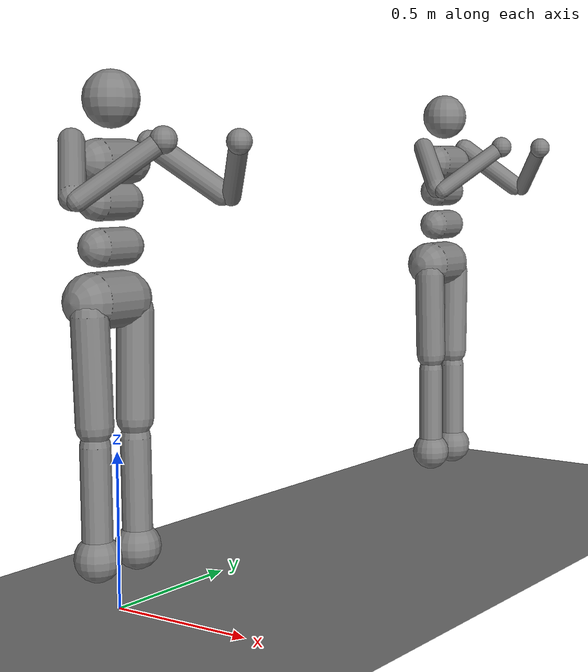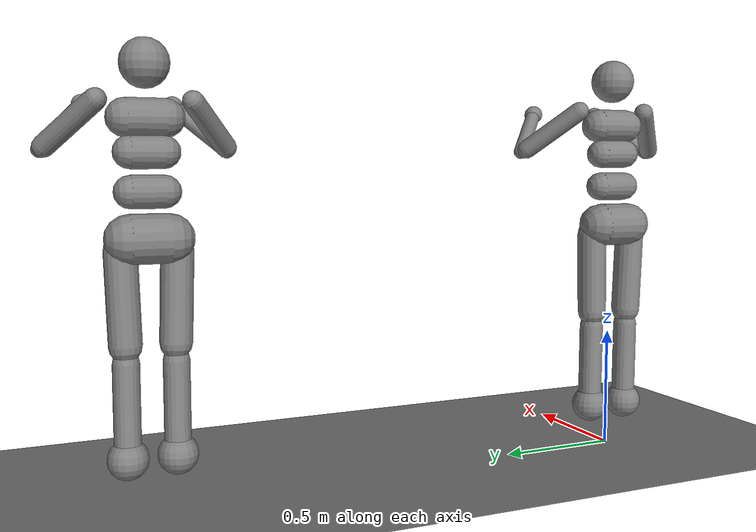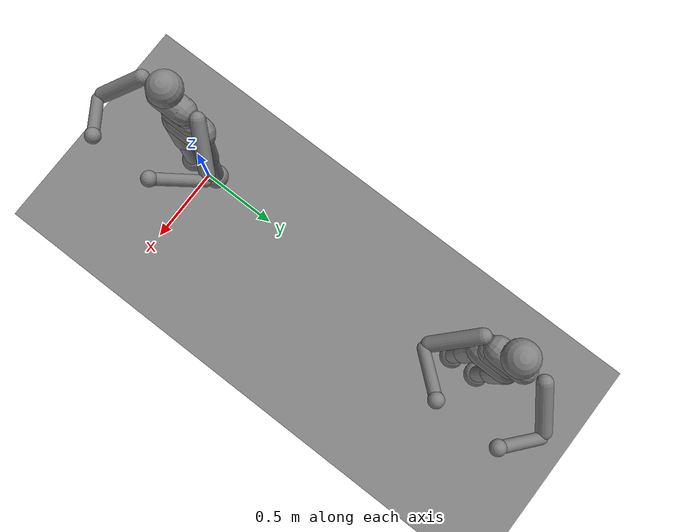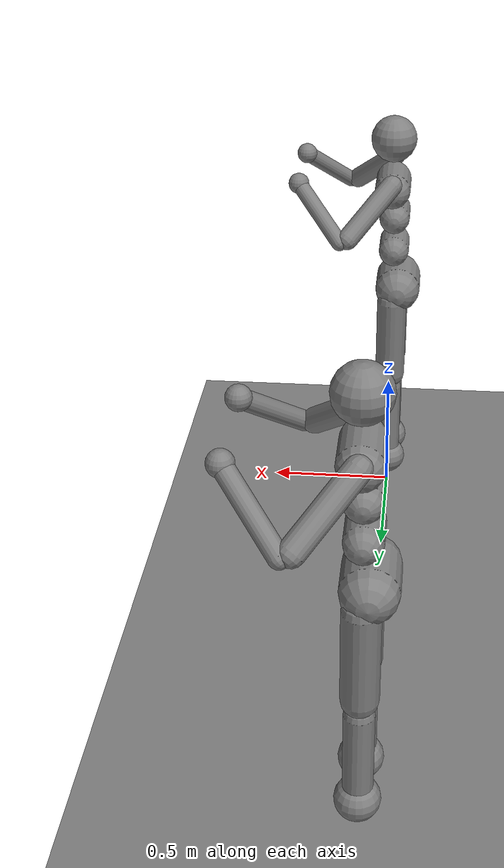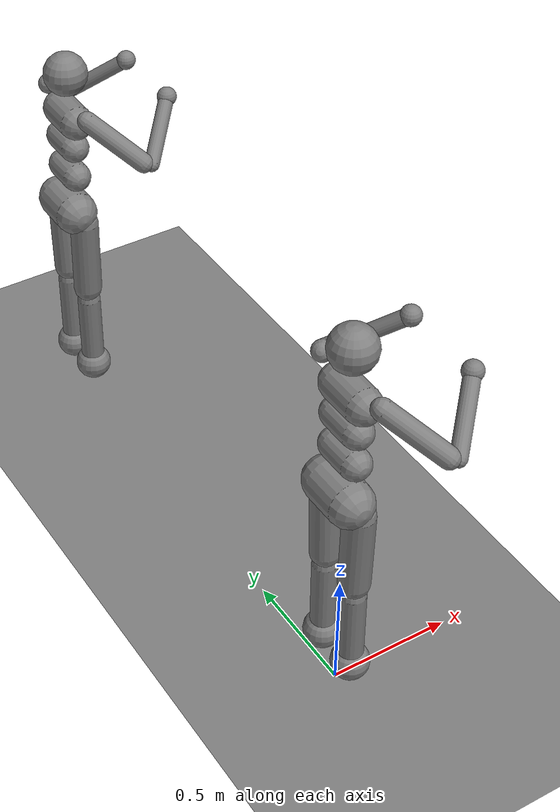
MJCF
<mujoco>
  <worldbody>
    <geom density="1000" type="plane" size="20 20 1" pos="0 1.88 0" quat="-1 0 0 0" priority="0" contype="0" conaffinity="1" group="0" condim="3" solmix="1" solref="0.02 1" solimp="0.9 0.95 0.001" margin="0" gap="0" friction="1 0.1 0.1" fluidshape="none" fluidcoef="5 0.25 1.5 1 1" name="floor_0" />
    <body pos="0 2.0 1.4" quat="-1 0 0 0" gravcomp="0" name="torso_1">
      <freejoint name="root_2" />
      <geom density="1000" type="capsule" size="0.07 0.07000002" pos="0 0 0" quat="0.7071068 0.7071068 0 0" priority="0" contype="0" conaffinity="0" group="0" condim="3" solmix="1" solref="0.02 1" solimp="0.9 0.95 0.001" margin="0" gap="0" friction="1 0.005 0.0001" fluidshape="none" fluidcoef="5 0.25 1.5 1 1" name="torso1_3" />
      <geom density="1000" type="sphere" size="0.09" pos="0 0 0.1899999" quat="-1 0 0 0" priority="0" contype="0" conaffinity="0" group="0" condim="3" solmix="1" solref="0.02 1" solimp="0.9 0.95 0.001" margin="0" gap="0" friction="1 0.005 0.0001" fluidshape="none" fluidcoef="5 0.25 1.5 1 1" name="head_4" />
      <geom density="1000" type="capsule" size="0.06 0.06000001" pos="-0.01 0 -0.12" quat="0.7071068 0.7071068 0 0" priority="0" contype="0" conaffinity="0" group="0" condim="3" solmix="1" solref="0.02 1" solimp="0.9 0.95 0.001" margin="0" gap="0" friction="1 0.005 0.0001" fluidshape="none" fluidcoef="5 0.25 1.5 1 1" name="uwaist_5" />
      <body pos="-0.01 0 -0.26" quat="0.999998 0 -0.002 0" gravcomp="0" name="lwaist_6">
        <joint type="hinge" pos="2.669552E-10 0 0.06499998" axis="-4.76837E-07 0 1" ref="0" armature="0.02" springref="0" springdamper="0 0" damping="5" stiffness="20" solreflimit="0.02 1" solimplimit="0.9 0.95 0.001 0.5 2" solreffriction="0.02 1" solimpfriction="0.9 0.95 0.001 0.5 2" frictionloss="0" limited="true" margin="0" range="-44.99999 44.99999" name="abdomen_z_9" />
        <joint type="hinge" pos="2.669552E-10 0 0.06499998" axis="-3.576278E-07 1 0" ref="0" armature="0.02" springref="0" springdamper="0 0" damping="5" stiffness="10" solreflimit="0.02 1" solimplimit="0.9 0.95 0.001 0.5 2" solreffriction="0.02 1" solimpfriction="0.9 0.95 0.001 0.5 2" frictionloss="0" limited="true" margin="0" range="-75.00018 30.00002" name="abdomen_y_10" />
        <geom density="1000" type="capsule" size="0.06 0.06000002" pos="0 0 0" quat="0.7071069 0.7071069 1.74352E-11 -1.74352E-11" priority="0" contype="0" conaffinity="0" group="0" condim="3" solmix="1" solref="0.02 1" solimp="0.9 0.95 0.001" margin="0" gap="0" friction="1 0.005 0.0001" fluidshape="none" fluidcoef="5 0.25 1.5 1 1" name="lwaist_11" />
        <body pos="-1.778979E-10 0 -0.165" quat="0.9999981 0 -0.002 0" gravcomp="0" name="pelvis_12">
          <joint type="hinge" pos="1.34564E-10 0 0.1" axis="1 0 0" ref="0" armature="0.02" springref="0" springdamper="0 0" damping="5" stiffness="10" solreflimit="0.02 1" solimplimit="0.9 0.95 0.001 0.5 2" solreffriction="0.02 1" solimpfriction="0.9 0.95 0.001 0.5 2" frictionloss="0" limited="true" margin="0" range="-34.99998 34.99998" name="abdomen_x_21" />
          <geom density="1000" type="capsule" size="0.09 0.07000005" pos="-0.02 0 -4.003656E-08" quat="0.707107 0.707107 1.94617E-10 -1.94617E-10" priority="0" contype="0" conaffinity="0" group="0" condim="3" solmix="1" solref="0.02 1" solimp="0.9 0.95 0.001" margin="0" gap="0" friction="1 0.005 0.0001" fluidshape="none" fluidcoef="5 0.25 1.5 1 1" name="butt_22" />
          <body pos="-4.352916E-10 -0.1 -0.04000005" quat="-1 0 0 0" gravcomp="0" name="right_thigh_23">
            <joint type="hinge" pos="0 0 0" axis="1 0 0" ref="0" armature="0.01" springref="0" springdamper="0 0" damping="5" stiffness="10" solreflimit="0.02 1" solimplimit="0.9 0.95 0.001 0.5 2" solreffriction="0.02 1" solimpfriction="0.9 0.95 0.001 0.5 2" frictionloss="0" limited="true" margin="0" range="-24.99998 5.000002" name="right_hip_x_31" />
            <joint type="hinge" pos="0 0 0" axis="-5.960461E-07 0 1" ref="0" armature="0.01" springref="0" springdamper="0 0" damping="5" stiffness="10" solreflimit="0.02 1" solimplimit="0.9 0.95 0.001 0.5 2" solreffriction="0.02 1" solimpfriction="0.9 0.95 0.001 0.5 2" frictionloss="0" limited="true" margin="0" range="-60.00014 34.99998" name="right_hip_z_32" />
            <joint type="hinge" pos="0 0 0" axis="-5.960461E-07 1 0" ref="0" armature="0.008" springref="0" springdamper="0 0" damping="5" stiffness="20" solreflimit="0.02 1" solimplimit="0.9 0.95 0.001 0.5 2" solreffriction="0.02 1" solimpfriction="0.9 0.95 0.001 0.5 2" frictionloss="0" limited="true" margin="0" range="-109.9999 20.00001" name="right_hip_y_33" />
            <geom density="1000" type="capsule" size="0.06 0.170074" pos="5.229871E-10 0.004999995 -0.17" quat="0.9998921 0.0147011 1.165678E-10 -9.564907E-13" priority="0" contype="0" conaffinity="0" group="0" condim="3" solmix="1" solref="0.02 1" solimp="0.9 0.95 0.001" margin="0" gap="0" friction="1 0.005 0.0001" fluidshape="none" fluidcoef="5 0.25 1.5 1 1" name="right_thigh1_34" />
            <body pos="3.726947E-10 0.00999999 -0.403" quat="-1 0 0 0" gravcomp="0" name="right_shin_35">
              <joint type="hinge" pos="2.176458E-10 0 0.02000003" axis="-5.960461E-07 -1 0" ref="0" armature="0.006" springref="0" springdamper="0 0" damping="1" stiffness="0" solreflimit="0.02 1" solimplimit="0.9 0.95 0.001 0.5 2" solreffriction="0.02 1" solimpfriction="0.9 0.95 0.001 0.5 2" frictionloss="0" limited="true" margin="0" range="-160.0002 -2.000001" name="right_knee_41" />
              <geom density="1000" type="capsule" size="0.049 0.15" pos="2.749865E-10 0 -0.1499999" quat="-1 0 0 0" priority="0" contype="0" conaffinity="0" group="0" condim="3" solmix="1" solref="0.02 1" solimp="0.9 0.95 0.001" margin="0" gap="0" friction="1 0.005 0.0001" fluidshape="none" fluidcoef="5 0.25 1.5 1 1" name="right_shin1_42" />
              <body pos="-1.287055E-10 0 -0.45" quat="-1 0 0 0" gravcomp="0" name="right_foot_43">
                <geom density="1000" type="sphere" size="0.075" pos="-3.534547E-10 0 0.09999988" quat="-1 0 0 0" priority="0" contype="1" conaffinity="0" group="0" condim="3" solmix="1" solref="0.02 1" solimp="0.9 0.95 0.001" margin="0" gap="0" friction="1 0.005 0.0001" fluidshape="none" fluidcoef="5 0.25 1.5 1 1" name="right_foot_47" />
              </body>
            </body>
          </body>
          <body pos="-4.352916E-10 0.1 -0.04000005" quat="-1 0 0 0" gravcomp="0" name="left_thigh_24">
            <joint type="hinge" pos="0 0 0" axis="-1 0 0" ref="0" armature="0.01" springref="0" springdamper="0 0" damping="5" stiffness="10" solreflimit="0.02 1" solimplimit="0.9 0.95 0.001 0.5 2" solreffriction="0.02 1" solimpfriction="0.9 0.95 0.001 0.5 2" frictionloss="0" limited="true" margin="0" range="-24.99998 5.000002" name="left_hip_x_36" />
            <joint type="hinge" pos="0 0 0" axis="-4.768369E-07 0 -1" ref="0" armature="0.01" springref="0" springdamper="0 0" damping="5" stiffness="10" solreflimit="0.02 1" solimplimit="0.9 0.95 0.001 0.5 2" solreffriction="0.02 1" solimpfriction="0.9 0.95 0.001 0.5 2" frictionloss="0" limited="true" margin="0" range="-60.00014 34.99998" name="left_hip_z_37" />
            <joint type="hinge" pos="0 0 0" axis="-5.960461E-07 1 0" ref="0" armature="0.01" springref="0" springdamper="0 0" damping="5" stiffness="20" solreflimit="0.02 1" solimplimit="0.9 0.95 0.001 0.5 2" solreffriction="0.02 1" solimpfriction="0.9 0.95 0.001 0.5 2" frictionloss="0" limited="true" margin="0" range="-109.9999 20.00001" name="left_hip_y_38" />
            <geom density="1000" type="capsule" size="0.06 0.170074" pos="5.229871E-10 -0.004999995 -0.17" quat="0.9998921 -0.0147011 1.165678E-10 9.564907E-13" priority="0" contype="0" conaffinity="0" group="0" condim="3" solmix="1" solref="0.02 1" solimp="0.9 0.95 0.001" margin="0" gap="0" friction="1 0.005 0.0001" fluidshape="none" fluidcoef="5 0.25 1.5 1 1" name="left_thigh1_39" />
            <body pos="3.726947E-10 -0.00999999 -0.403" quat="-1 0 0 0" gravcomp="0" name="left_shin_40">
              <joint type="hinge" pos="2.176458E-10 0 0.02000003" axis="-5.960461E-07 -1 0" ref="0" armature="0.006" springref="0" springdamper="0 0" damping="1" stiffness="1" solreflimit="0.02 1" solimplimit="0.9 0.95 0.001 0.5 2" solreffriction="0.02 1" solimpfriction="0.9 0.95 0.001 0.5 2" frictionloss="0" limited="true" margin="0" range="-160.0002 -2.000001" name="left_knee_44" />
              <geom density="1000" type="capsule" size="0.049 0.15" pos="2.749865E-10 0 -0.1499999" quat="-1 0 0 0" priority="0" contype="0" conaffinity="0" group="0" condim="3" solmix="1" solref="0.02 1" solimp="0.9 0.95 0.001" margin="0" gap="0" friction="1 0.005 0.0001" fluidshape="none" fluidcoef="5 0.25 1.5 1 1" name="left_shin1_45" />
              <body pos="-1.287055E-10 0 -0.45" quat="-1 0 0 0" gravcomp="0" name="left_foot_46">
                <geom density="1000" type="sphere" size="0.075" pos="-3.534547E-10 0 0.09999988" quat="-1 0 0 0" priority="0" contype="1" conaffinity="0" group="0" condim="3" solmix="1" solref="0.02 1" solimp="0.9 0.95 0.001" margin="0" gap="0" friction="1 0.005 0.0001" fluidshape="none" fluidcoef="5 0.25 1.5 1 1" name="left_foot_48" />
              </body>
            </body>
          </body>
        </body>
      </body>
      <body pos="0 -0.17 0.05999994" quat="-1 0 0 0" gravcomp="0" name="right_upper_arm_7">
        <joint type="hinge" pos="0 0 0" axis="0.8164969 0.408248 0.408248" ref="0" armature="0.0068" springref="0" springdamper="0 0" damping="1" stiffness="1" solreflimit="0.02 1" solimplimit="0.9 0.95 0.001 0.5 2" solreffriction="0.02 1" solimpfriction="0.9 0.95 0.001 0.5 2" frictionloss="0" limited="true" margin="0" range="-85.00001 60.00014" name="right_shoulder1_13" />
        <joint type="hinge" pos="0 0 0" axis="0 -0.7071068 0.7071068" ref="0" armature="0.0051" springref="0" springdamper="0 0" damping="1" stiffness="1" solreflimit="0.02 1" solimplimit="0.9 0.95 0.001 0.5 2" solreffriction="0.02 1" solimpfriction="0.9 0.95 0.001 0.5 2" frictionloss="0" limited="true" margin="0" range="-85.00001 60.00014" name="right_shoulder2_14" />
        <geom density="1000" type="capsule" size="0.04 0.138564" pos="0.08 -0.08000004 -0.07999992" quat="0.8880737 -0.3250579 -0.3250579 0" priority="0" contype="0" conaffinity="0" group="0" condim="3" solmix="1" solref="0.02 1" solimp="0.9 0.95 0.001" margin="0" gap="0" friction="1 0.005 0.0001" fluidshape="none" fluidcoef="5 0.25 1.5 1 1" name="right_uarm1_15" />
        <body pos="0.18 -0.1800001 -0.1799999" quat="-1 0 0 0" gravcomp="0" name="right_lower_arm_16">
          <joint type="hinge" pos="0 0 0" axis="0 -0.7071068 0.7071068" ref="0" armature="0.0028" springref="0" springdamper="0 0" damping="1" stiffness="0" solreflimit="0.02 1" solimplimit="0.9 0.95 0.001 0.5 2" solreffriction="0.02 1" solimpfriction="0.9 0.95 0.001 0.5 2" frictionloss="0" limited="true" margin="0" range="-90.00021 50.00002" name="right_elbow_25" />
          <geom density="1000" type="capsule" size="0.031 0.138564" pos="0.09 0.09000003 0.09000003" quat="0.459701 0.627963 -0.627963 0" priority="0" contype="0" conaffinity="0" group="0" condim="3" solmix="1" solref="0.02 1" solimp="0.9 0.95 0.001" margin="0" gap="0" friction="1 0.005 0.0001" fluidshape="none" fluidcoef="5 0.25 1.5 1 1" name="right_larm_26" />
          <geom density="1000" type="sphere" size="0.04" pos="0.18 0.1800001 0.1799999" quat="-1 0 0 0" priority="0" contype="0" conaffinity="0" group="0" condim="3" solmix="1" solref="0.02 1" solimp="0.9 0.95 0.001" margin="0" gap="0" friction="1 0.005 0.0001" fluidshape="none" fluidcoef="5 0.25 1.5 1 1" name="right_hand_27" />
        </body>
      </body>
      <body pos="0 0.17 0.05999994" quat="-1 0 0 0" gravcomp="0" name="left_upper_arm_8">
        <joint type="hinge" pos="0 0 0" axis="0.8164969 -0.408248 0.408248" ref="0" armature="0.0068" springref="0" springdamper="0 0" damping="1" stiffness="1" solreflimit="0.02 1" solimplimit="0.9 0.95 0.001 0.5 2" solreffriction="0.02 1" solimpfriction="0.9 0.95 0.001 0.5 2" frictionloss="0" limited="true" margin="0" range="-60.00014 85.00001" name="left_shoulder1_17" />
        <joint type="hinge" pos="0 0 0" axis="0 0.7071068 0.7071068" ref="0" armature="0.0051" springref="0" springdamper="0 0" damping="1" stiffness="1" solreflimit="0.02 1" solimplimit="0.9 0.95 0.001 0.5 2" solreffriction="0.02 1" solimpfriction="0.9 0.95 0.001 0.5 2" frictionloss="0" limited="true" margin="0" range="-60.00014 85.00001" name="left_shoulder2_18" />
        <geom density="1000" type="capsule" size="0.04 0.138564" pos="0.08 0.08000016 -0.07999992" quat="0.8880737 0.3250579 -0.3250579 0" priority="0" contype="0" conaffinity="0" group="0" condim="3" solmix="1" solref="0.02 1" solimp="0.9 0.95 0.001" margin="0" gap="0" friction="1 0.005 0.0001" fluidshape="none" fluidcoef="5 0.25 1.5 1 1" name="left_uarm1_19" />
        <body pos="0.18 0.1800001 -0.1799999" quat="-1 0 0 0" gravcomp="0" name="left_lower_arm_20">
          <joint type="hinge" pos="0 0 0" axis="0 -0.7071068 -0.7071068" ref="0" armature="0.0028" springref="0" springdamper="0 0" damping="1" stiffness="0" solreflimit="0.02 1" solimplimit="0.9 0.95 0.001 0.5 2" solreffriction="0.02 1" solimpfriction="0.9 0.95 0.001 0.5 2" frictionloss="0" limited="true" margin="0" range="-90.00021 50.00002" name="left_elbow_28" />
          <geom density="1000" type="capsule" size="0.031 0.138564" pos="0.09 -0.09000015 0.09000003" quat="0.459701 -0.627963 -0.627963 0" priority="0" contype="0" conaffinity="0" group="0" condim="3" solmix="1" solref="0.02 1" solimp="0.9 0.95 0.001" margin="0" gap="0" friction="1 0.005 0.0001" fluidshape="none" fluidcoef="5 0.25 1.5 1 1" name="left_larm_29" />
          <geom density="1000" type="sphere" size="0.04" pos="0.18 -0.1800001 0.1799999" quat="-1 0 0 0" priority="0" contype="0" conaffinity="0" group="0" condim="3" solmix="1" solref="0.02 1" solimp="0.9 0.95 0.001" margin="0" gap="0" friction="1 0.005 0.0001" fluidshape="none" fluidcoef="5 0.25 1.5 1 1" name="left_hand_30" />
        </body>
      </body>
    </body>
    <body pos="0 0 1.4" quat="-1 0 0 0" gravcomp="0" name="torso_49">
      <freejoint name="root_50" />
      <geom density="1000" type="capsule" size="0.07 0.07000002" pos="0 0 0" quat="0.7071068 0.7071068 0 0" priority="0" contype="0" conaffinity="0" group="0" condim="3" solmix="1" solref="0.02 1" solimp="0.9 0.95 0.001" margin="0" gap="0" friction="1 0.005 0.0001" fluidshape="none" fluidcoef="5 0.25 1.5 1 1" name="torso1_51" />
      <geom density="1000" type="sphere" size="0.09" pos="0 0 0.1899999" quat="-1 0 0 0" priority="0" contype="0" conaffinity="0" group="0" condim="3" solmix="1" solref="0.02 1" solimp="0.9 0.95 0.001" margin="0" gap="0" friction="1 0.005 0.0001" fluidshape="none" fluidcoef="5 0.25 1.5 1 1" name="head_52" />
      <geom density="1000" type="capsule" size="0.06 0.06000001" pos="-0.01 0 -0.12" quat="0.7071068 0.7071068 0 0" priority="0" contype="0" conaffinity="0" group="0" condim="3" solmix="1" solref="0.02 1" solimp="0.9 0.95 0.001" margin="0" gap="0" friction="1 0.005 0.0001" fluidshape="none" fluidcoef="5 0.25 1.5 1 1" name="uwaist_53" />
      <body pos="-0.01 0 -0.26" quat="0.999998 0 -0.002 0" gravcomp="0" name="lwaist_54">
        <joint type="hinge" pos="2.669552E-10 0 0.06499998" axis="-4.76837E-07 0 1" ref="0" armature="0.02" springref="0" springdamper="0 0" damping="5" stiffness="20" solreflimit="0.02 1" solimplimit="0.9 0.95 0.001 0.5 2" solreffriction="0.02 1" solimpfriction="0.9 0.95 0.001 0.5 2" frictionloss="0" limited="true" margin="0" range="-44.99999 44.99999" name="abdomen_z_57" />
        <joint type="hinge" pos="2.669552E-10 0 0.06499998" axis="-3.576278E-07 1 0" ref="0" armature="0.02" springref="0" springdamper="0 0" damping="5" stiffness="10" solreflimit="0.02 1" solimplimit="0.9 0.95 0.001 0.5 2" solreffriction="0.02 1" solimpfriction="0.9 0.95 0.001 0.5 2" frictionloss="0" limited="true" margin="0" range="-75.00018 30.00002" name="abdomen_y_58" />
        <geom density="1000" type="capsule" size="0.06 0.06000002" pos="0 0 0" quat="0.7071069 0.7071069 1.74352E-11 -1.74352E-11" priority="0" contype="0" conaffinity="0" group="0" condim="3" solmix="1" solref="0.02 1" solimp="0.9 0.95 0.001" margin="0" gap="0" friction="1 0.005 0.0001" fluidshape="none" fluidcoef="5 0.25 1.5 1 1" name="lwaist_59" />
        <body pos="-1.778979E-10 0 -0.165" quat="0.9999981 0 -0.002 0" gravcomp="0" name="pelvis_60">
          <joint type="hinge" pos="1.34564E-10 0 0.1" axis="1 0 0" ref="0" armature="0.02" springref="0" springdamper="0 0" damping="5" stiffness="10" solreflimit="0.02 1" solimplimit="0.9 0.95 0.001 0.5 2" solreffriction="0.02 1" solimpfriction="0.9 0.95 0.001 0.5 2" frictionloss="0" limited="true" margin="0" range="-34.99998 34.99998" name="abdomen_x_69" />
          <geom density="1000" type="capsule" size="0.09 0.07000005" pos="-0.02 0 -4.003656E-08" quat="0.707107 0.707107 1.94617E-10 -1.94617E-10" priority="0" contype="0" conaffinity="0" group="0" condim="3" solmix="1" solref="0.02 1" solimp="0.9 0.95 0.001" margin="0" gap="0" friction="1 0.005 0.0001" fluidshape="none" fluidcoef="5 0.25 1.5 1 1" name="butt_70" />
          <body pos="-4.352916E-10 -0.1 -0.04000005" quat="-1 0 0 0" gravcomp="0" name="right_thigh_71">
            <joint type="hinge" pos="0 0 0" axis="1 0 0" ref="0" armature="0.01" springref="0" springdamper="0 0" damping="5" stiffness="10" solreflimit="0.02 1" solimplimit="0.9 0.95 0.001 0.5 2" solreffriction="0.02 1" solimpfriction="0.9 0.95 0.001 0.5 2" frictionloss="0" limited="true" margin="0" range="-24.99998 5.000002" name="right_hip_x_79" />
            <joint type="hinge" pos="0 0 0" axis="-5.960461E-07 0 1" ref="0" armature="0.01" springref="0" springdamper="0 0" damping="5" stiffness="10" solreflimit="0.02 1" solimplimit="0.9 0.95 0.001 0.5 2" solreffriction="0.02 1" solimpfriction="0.9 0.95 0.001 0.5 2" frictionloss="0" limited="true" margin="0" range="-60.00014 34.99998" name="right_hip_z_80" />
            <joint type="hinge" pos="0 0 0" axis="-5.960461E-07 1 0" ref="0" armature="0.008" springref="0" springdamper="0 0" damping="5" stiffness="20" solreflimit="0.02 1" solimplimit="0.9 0.95 0.001 0.5 2" solreffriction="0.02 1" solimpfriction="0.9 0.95 0.001 0.5 2" frictionloss="0" limited="true" margin="0" range="-109.9999 20.00001" name="right_hip_y_81" />
            <geom density="1000" type="capsule" size="0.06 0.170074" pos="5.229871E-10 0.005000003 -0.17" quat="0.9998921 0.0147011 1.165678E-10 -9.564907E-13" priority="0" contype="0" conaffinity="0" group="0" condim="3" solmix="1" solref="0.02 1" solimp="0.9 0.95 0.001" margin="0" gap="0" friction="1 0.005 0.0001" fluidshape="none" fluidcoef="5 0.25 1.5 1 1" name="right_thigh1_82" />
            <body pos="3.726947E-10 0.009999998 -0.403" quat="-1 0 0 0" gravcomp="0" name="right_shin_83">
              <joint type="hinge" pos="2.176458E-10 0 0.02000003" axis="-5.960461E-07 -1 0" ref="0" armature="0.006" springref="0" springdamper="0 0" damping="1" stiffness="0" solreflimit="0.02 1" solimplimit="0.9 0.95 0.001 0.5 2" solreffriction="0.02 1" solimpfriction="0.9 0.95 0.001 0.5 2" frictionloss="0" limited="true" margin="0" range="-160.0002 -2.000001" name="right_knee_89" />
              <geom density="1000" type="capsule" size="0.049 0.15" pos="2.749865E-10 0 -0.1499999" quat="-1 0 0 0" priority="0" contype="0" conaffinity="0" group="0" condim="3" solmix="1" solref="0.02 1" solimp="0.9 0.95 0.001" margin="0" gap="0" friction="1 0.005 0.0001" fluidshape="none" fluidcoef="5 0.25 1.5 1 1" name="right_shin1_90" />
              <body pos="-1.287055E-10 0 -0.45" quat="-1 0 0 0" gravcomp="0" name="right_foot_91">
                <geom density="1000" type="sphere" size="0.075" pos="-3.534547E-10 0 0.09999988" quat="-1 0 0 0" priority="0" contype="1" conaffinity="0" group="0" condim="3" solmix="1" solref="0.02 1" solimp="0.9 0.95 0.001" margin="0" gap="0" friction="1 0.005 0.0001" fluidshape="none" fluidcoef="5 0.25 1.5 1 1" name="right_foot_95" />
              </body>
            </body>
          </body>
          <body pos="-4.352916E-10 0.1 -0.04000005" quat="-1 0 0 0" gravcomp="0" name="left_thigh_72">
            <joint type="hinge" pos="0 0 0" axis="-1 0 0" ref="0" armature="0.01" springref="0" springdamper="0 0" damping="5" stiffness="10" solreflimit="0.02 1" solimplimit="0.9 0.95 0.001 0.5 2" solreffriction="0.02 1" solimpfriction="0.9 0.95 0.001 0.5 2" frictionloss="0" limited="true" margin="0" range="-24.99998 5.000002" name="left_hip_x_84" />
            <joint type="hinge" pos="0 0 0" axis="-4.768369E-07 0 -1" ref="0" armature="0.01" springref="0" springdamper="0 0" damping="5" stiffness="10" solreflimit="0.02 1" solimplimit="0.9 0.95 0.001 0.5 2" solreffriction="0.02 1" solimpfriction="0.9 0.95 0.001 0.5 2" frictionloss="0" limited="true" margin="0" range="-60.00014 34.99998" name="left_hip_z_85" />
            <joint type="hinge" pos="0 0 0" axis="-5.960461E-07 1 0" ref="0" armature="0.01" springref="0" springdamper="0 0" damping="5" stiffness="20" solreflimit="0.02 1" solimplimit="0.9 0.95 0.001 0.5 2" solreffriction="0.02 1" solimpfriction="0.9 0.95 0.001 0.5 2" frictionloss="0" limited="true" margin="0" range="-109.9999 20.00001" name="left_hip_y_86" />
            <geom density="1000" type="capsule" size="0.06 0.170074" pos="5.229871E-10 -0.005000003 -0.17" quat="0.9998921 -0.0147011 1.165678E-10 9.564907E-13" priority="0" contype="0" conaffinity="0" group="0" condim="3" solmix="1" solref="0.02 1" solimp="0.9 0.95 0.001" margin="0" gap="0" friction="1 0.005 0.0001" fluidshape="none" fluidcoef="5 0.25 1.5 1 1" name="left_thigh1_87" />
            <body pos="3.726947E-10 -0.009999998 -0.403" quat="-1 0 0 0" gravcomp="0" name="left_shin_88">
              <joint type="hinge" pos="2.176458E-10 0 0.02000003" axis="-5.960461E-07 -1 0" ref="0" armature="0.006" springref="0" springdamper="0 0" damping="1" stiffness="1" solreflimit="0.02 1" solimplimit="0.9 0.95 0.001 0.5 2" solreffriction="0.02 1" solimpfriction="0.9 0.95 0.001 0.5 2" frictionloss="0" limited="true" margin="0" range="-160.0002 -2.000001" name="left_knee_92" />
              <geom density="1000" type="capsule" size="0.049 0.15" pos="2.749865E-10 0 -0.1499999" quat="-1 0 0 0" priority="0" contype="0" conaffinity="0" group="0" condim="3" solmix="1" solref="0.02 1" solimp="0.9 0.95 0.001" margin="0" gap="0" friction="1 0.005 0.0001" fluidshape="none" fluidcoef="5 0.25 1.5 1 1" name="left_shin1_93" />
              <body pos="-1.287055E-10 0 -0.45" quat="-1 0 0 0" gravcomp="0" name="left_foot_94">
                <geom density="1000" type="sphere" size="0.075" pos="-3.534547E-10 0 0.09999988" quat="-1 0 0 0" priority="0" contype="1" conaffinity="0" group="0" condim="3" solmix="1" solref="0.02 1" solimp="0.9 0.95 0.001" margin="0" gap="0" friction="1 0.005 0.0001" fluidshape="none" fluidcoef="5 0.25 1.5 1 1" name="left_foot_96" />
              </body>
            </body>
          </body>
        </body>
      </body>
      <body pos="0 -0.17 0.05999994" quat="-1 0 0 0" gravcomp="0" name="right_upper_arm_55">
        <joint type="hinge" pos="0 0 0" axis="0.8164969 0.408248 0.408248" ref="0" armature="0.0068" springref="0" springdamper="0 0" damping="1" stiffness="1" solreflimit="0.02 1" solimplimit="0.9 0.95 0.001 0.5 2" solreffriction="0.02 1" solimpfriction="0.9 0.95 0.001 0.5 2" frictionloss="0" limited="true" margin="0" range="-85.00001 60.00014" name="right_shoulder1_61" />
        <joint type="hinge" pos="0 0 0" axis="0 -0.7071068 0.7071068" ref="0" armature="0.0051" springref="0" springdamper="0 0" damping="1" stiffness="1" solreflimit="0.02 1" solimplimit="0.9 0.95 0.001 0.5 2" solreffriction="0.02 1" solimpfriction="0.9 0.95 0.001 0.5 2" frictionloss="0" limited="true" margin="0" range="-85.00001 60.00014" name="right_shoulder2_62" />
        <geom density="1000" type="capsule" size="0.04 0.138564" pos="0.08 -0.08 -0.07999992" quat="0.8880737 -0.3250579 -0.3250579 0" priority="0" contype="0" conaffinity="0" group="0" condim="3" solmix="1" solref="0.02 1" solimp="0.9 0.95 0.001" margin="0" gap="0" friction="1 0.005 0.0001" fluidshape="none" fluidcoef="5 0.25 1.5 1 1" name="right_uarm1_63" />
        <body pos="0.18 -0.18 -0.1799999" quat="-1 0 0 0" gravcomp="0" name="right_lower_arm_64">
          <joint type="hinge" pos="0 0 0" axis="0 -0.7071068 0.7071068" ref="0" armature="0.0028" springref="0" springdamper="0 0" damping="1" stiffness="0" solreflimit="0.02 1" solimplimit="0.9 0.95 0.001 0.5 2" solreffriction="0.02 1" solimpfriction="0.9 0.95 0.001 0.5 2" frictionloss="0" limited="true" margin="0" range="-90.00021 50.00002" name="right_elbow_73" />
          <geom density="1000" type="capsule" size="0.031 0.138564" pos="0.09 0.09000003 0.09000003" quat="0.459701 0.627963 -0.627963 0" priority="0" contype="0" conaffinity="0" group="0" condim="3" solmix="1" solref="0.02 1" solimp="0.9 0.95 0.001" margin="0" gap="0" friction="1 0.005 0.0001" fluidshape="none" fluidcoef="5 0.25 1.5 1 1" name="right_larm_74" />
          <geom density="1000" type="sphere" size="0.04" pos="0.18 0.18 0.1799999" quat="-1 0 0 0" priority="0" contype="0" conaffinity="0" group="0" condim="3" solmix="1" solref="0.02 1" solimp="0.9 0.95 0.001" margin="0" gap="0" friction="1 0.005 0.0001" fluidshape="none" fluidcoef="5 0.25 1.5 1 1" name="right_hand_75" />
        </body>
      </body>
      <body pos="0 0.17 0.05999994" quat="-1 0 0 0" gravcomp="0" name="left_upper_arm_56">
        <joint type="hinge" pos="0 0 0" axis="0.8164969 -0.408248 0.408248" ref="0" armature="0.0068" springref="0" springdamper="0 0" damping="1" stiffness="1" solreflimit="0.02 1" solimplimit="0.9 0.95 0.001 0.5 2" solreffriction="0.02 1" solimpfriction="0.9 0.95 0.001 0.5 2" frictionloss="0" limited="true" margin="0" range="-60.00014 85.00001" name="left_shoulder1_65" />
        <joint type="hinge" pos="0 0 0" axis="0 0.7071068 0.7071068" ref="0" armature="0.0051" springref="0" springdamper="0 0" damping="1" stiffness="1" solreflimit="0.02 1" solimplimit="0.9 0.95 0.001 0.5 2" solreffriction="0.02 1" solimpfriction="0.9 0.95 0.001 0.5 2" frictionloss="0" limited="true" margin="0" range="-60.00014 85.00001" name="left_shoulder2_66" />
        <geom density="1000" type="capsule" size="0.04 0.138564" pos="0.08 0.08 -0.07999992" quat="0.8880737 0.3250579 -0.3250579 0" priority="0" contype="0" conaffinity="0" group="0" condim="3" solmix="1" solref="0.02 1" solimp="0.9 0.95 0.001" margin="0" gap="0" friction="1 0.005 0.0001" fluidshape="none" fluidcoef="5 0.25 1.5 1 1" name="left_uarm1_67" />
        <body pos="0.18 0.18 -0.1799999" quat="-1 0 0 0" gravcomp="0" name="left_lower_arm_68">
          <joint type="hinge" pos="0 0 0" axis="0 -0.7071068 -0.7071068" ref="0" armature="0.0028" springref="0" springdamper="0 0" damping="1" stiffness="0" solreflimit="0.02 1" solimplimit="0.9 0.95 0.001 0.5 2" solreffriction="0.02 1" solimpfriction="0.9 0.95 0.001 0.5 2" frictionloss="0" limited="true" margin="0" range="-90.00021 50.00002" name="left_elbow_76" />
          <geom density="1000" type="capsule" size="0.031 0.138564" pos="0.09 -0.09000003 0.09000003" quat="0.459701 -0.627963 -0.627963 0" priority="0" contype="0" conaffinity="0" group="0" condim="3" solmix="1" solref="0.02 1" solimp="0.9 0.95 0.001" margin="0" gap="0" friction="1 0.005 0.0001" fluidshape="none" fluidcoef="5 0.25 1.5 1 1" name="left_larm_77" />
          <geom density="1000" type="sphere" size="0.04" pos="0.18 -0.18 0.1799999" quat="-1 0 0 0" priority="0" contype="0" conaffinity="0" group="0" condim="3" solmix="1" solref="0.02 1" solimp="0.9 0.95 0.001" margin="0" gap="0" friction="1 0.005 0.0001" fluidshape="none" fluidcoef="5 0.25 1.5 1 1" name="left_hand_78" />
        </body>
      </body>
    </body>
    <geom density="1000" type="plane" size="20 20 1" pos="0 0 0" quat="-1 0 0 0" priority="0" contype="0" conaffinity="1" group="0" condim="3" solmix="1" solref="0.02 1" solimp="0.9 0.95 0.001" margin="0" gap="0" friction="1 0.1 0.1" fluidshape="none" fluidcoef="5 0.25 1.5 1 1" name="floor_97" />
  </worldbody>
  <contact />
  <tendon />
  <equality />
  <actuator>
    <general joint="abdomen_y_10" ctrllimited="true" forcelimited="false" ctrlrange="-0.4 0.4" forcerange="0 0" lengthrange="0 0" gear="100 0 0 0 0 0" dyntype="none" gaintype="fixed" biastype="none" dynprm="1 0 0" gainprm="1 0 0" biasprm="0 0 0" name="abdomen_y_98" />
    <general joint="abdomen_y_58" ctrllimited="true" forcelimited="false" ctrlrange="-0.4 0.4" forcerange="0 0" lengthrange="0 0" gear="100 0 0 0 0 0" dyntype="none" gaintype="fixed" biastype="none" dynprm="1 0 0" gainprm="1 0 0" biasprm="0 0 0" name="abdomen_y_99" />
    <general joint="abdomen_z_9" ctrllimited="true" forcelimited="false" ctrlrange="-0.4 0.4" forcerange="0 0" lengthrange="0 0" gear="100 0 0 0 0 0" dyntype="none" gaintype="fixed" biastype="none" dynprm="1 0 0" gainprm="1 0 0" biasprm="0 0 0" name="abdomen_z_100" />
    <general joint="abdomen_z_57" ctrllimited="true" forcelimited="false" ctrlrange="-0.4 0.4" forcerange="0 0" lengthrange="0 0" gear="100 0 0 0 0 0" dyntype="none" gaintype="fixed" biastype="none" dynprm="1 0 0" gainprm="1 0 0" biasprm="0 0 0" name="abdomen_z_101" />
    <general joint="abdomen_x_21" ctrllimited="true" forcelimited="false" ctrlrange="-0.4 0.4" forcerange="0 0" lengthrange="0 0" gear="100 0 0 0 0 0" dyntype="none" gaintype="fixed" biastype="none" dynprm="1 0 0" gainprm="1 0 0" biasprm="0 0 0" name="abdomen_x_102" />
    <general joint="abdomen_x_69" ctrllimited="true" forcelimited="false" ctrlrange="-0.4 0.4" forcerange="0 0" lengthrange="0 0" gear="100 0 0 0 0 0" dyntype="none" gaintype="fixed" biastype="none" dynprm="1 0 0" gainprm="1 0 0" biasprm="0 0 0" name="abdomen_x_103" />
    <general joint="right_hip_x_31" ctrllimited="true" forcelimited="false" ctrlrange="-0.4 0.4" forcerange="0 0" lengthrange="0 0" gear="100 0 0 0 0 0" dyntype="none" gaintype="fixed" biastype="none" dynprm="1 0 0" gainprm="1 0 0" biasprm="0 0 0" name="right_hip_x_104" />
    <general joint="right_hip_x_79" ctrllimited="true" forcelimited="false" ctrlrange="-0.4 0.4" forcerange="0 0" lengthrange="0 0" gear="100 0 0 0 0 0" dyntype="none" gaintype="fixed" biastype="none" dynprm="1 0 0" gainprm="1 0 0" biasprm="0 0 0" name="right_hip_x_105" />
    <general joint="right_hip_z_32" ctrllimited="true" forcelimited="false" ctrlrange="-0.4 0.4" forcerange="0 0" lengthrange="0 0" gear="100 0 0 0 0 0" dyntype="none" gaintype="fixed" biastype="none" dynprm="1 0 0" gainprm="1 0 0" biasprm="0 0 0" name="right_hip_z_106" />
    <general joint="right_hip_z_80" ctrllimited="true" forcelimited="false" ctrlrange="-0.4 0.4" forcerange="0 0" lengthrange="0 0" gear="100 0 0 0 0 0" dyntype="none" gaintype="fixed" biastype="none" dynprm="1 0 0" gainprm="1 0 0" biasprm="0 0 0" name="right_hip_z_107" />
    <general joint="right_hip_y_33" ctrllimited="true" forcelimited="false" ctrlrange="-0.4 0.4" forcerange="0 0" lengthrange="0 0" gear="300 0 0 0 0 0" dyntype="none" gaintype="fixed" biastype="none" dynprm="1 0 0" gainprm="1 0 0" biasprm="0 0 0" name="right_hip_y_108" />
    <general joint="right_hip_y_81" ctrllimited="true" forcelimited="false" ctrlrange="-0.4 0.4" forcerange="0 0" lengthrange="0 0" gear="300 0 0 0 0 0" dyntype="none" gaintype="fixed" biastype="none" dynprm="1 0 0" gainprm="1 0 0" biasprm="0 0 0" name="right_hip_y_109" />
    <general joint="right_knee_41" ctrllimited="true" forcelimited="false" ctrlrange="-0.4 0.4" forcerange="0 0" lengthrange="0 0" gear="200 0 0 0 0 0" dyntype="none" gaintype="fixed" biastype="none" dynprm="1 0 0" gainprm="1 0 0" biasprm="0 0 0" name="right_knee_110" />
    <general joint="right_knee_89" ctrllimited="true" forcelimited="false" ctrlrange="-0.4 0.4" forcerange="0 0" lengthrange="0 0" gear="200 0 0 0 0 0" dyntype="none" gaintype="fixed" biastype="none" dynprm="1 0 0" gainprm="1 0 0" biasprm="0 0 0" name="right_knee_111" />
    <general joint="left_hip_x_36" ctrllimited="true" forcelimited="false" ctrlrange="-0.4 0.4" forcerange="0 0" lengthrange="0 0" gear="100 0 0 0 0 0" dyntype="none" gaintype="fixed" biastype="none" dynprm="1 0 0" gainprm="1 0 0" biasprm="0 0 0" name="left_hip_x_112" />
    <general joint="left_hip_x_84" ctrllimited="true" forcelimited="false" ctrlrange="-0.4 0.4" forcerange="0 0" lengthrange="0 0" gear="100 0 0 0 0 0" dyntype="none" gaintype="fixed" biastype="none" dynprm="1 0 0" gainprm="1 0 0" biasprm="0 0 0" name="left_hip_x_113" />
    <general joint="left_hip_z_37" ctrllimited="true" forcelimited="false" ctrlrange="-0.4 0.4" forcerange="0 0" lengthrange="0 0" gear="100 0 0 0 0 0" dyntype="none" gaintype="fixed" biastype="none" dynprm="1 0 0" gainprm="1 0 0" biasprm="0 0 0" name="left_hip_z_114" />
    <general joint="left_hip_z_85" ctrllimited="true" forcelimited="false" ctrlrange="-0.4 0.4" forcerange="0 0" lengthrange="0 0" gear="100 0 0 0 0 0" dyntype="none" gaintype="fixed" biastype="none" dynprm="1 0 0" gainprm="1 0 0" biasprm="0 0 0" name="left_hip_z_115" />
    <general joint="left_hip_y_38" ctrllimited="true" forcelimited="false" ctrlrange="-0.4 0.4" forcerange="0 0" lengthrange="0 0" gear="300 0 0 0 0 0" dyntype="none" gaintype="fixed" biastype="none" dynprm="1 0 0" gainprm="1 0 0" biasprm="0 0 0" name="left_hip_y_116" />
    <general joint="left_hip_y_86" ctrllimited="true" forcelimited="false" ctrlrange="-0.4 0.4" forcerange="0 0" lengthrange="0 0" gear="300 0 0 0 0 0" dyntype="none" gaintype="fixed" biastype="none" dynprm="1 0 0" gainprm="1 0 0" biasprm="0 0 0" name="left_hip_y_117" />
    <general joint="left_knee_44" ctrllimited="true" forcelimited="false" ctrlrange="-0.4 0.4" forcerange="0 0" lengthrange="0 0" gear="200 0 0 0 0 0" dyntype="none" gaintype="fixed" biastype="none" dynprm="1 0 0" gainprm="1 0 0" biasprm="0 0 0" name="left_knee_118" />
    <general joint="left_knee_92" ctrllimited="true" forcelimited="false" ctrlrange="-0.4 0.4" forcerange="0 0" lengthrange="0 0" gear="200 0 0 0 0 0" dyntype="none" gaintype="fixed" biastype="none" dynprm="1 0 0" gainprm="1 0 0" biasprm="0 0 0" name="left_knee_119" />
    <general joint="right_shoulder1_13" ctrllimited="true" forcelimited="false" ctrlrange="-0.4 0.4" forcerange="0 0" lengthrange="0 0" gear="25 0 0 0 0 0" dyntype="none" gaintype="fixed" biastype="none" dynprm="1 0 0" gainprm="1 0 0" biasprm="0 0 0" name="right_shoulder1_120" />
    <general joint="right_shoulder1_61" ctrllimited="true" forcelimited="false" ctrlrange="-0.4 0.4" forcerange="0 0" lengthrange="0 0" gear="25 0 0 0 0 0" dyntype="none" gaintype="fixed" biastype="none" dynprm="1 0 0" gainprm="1 0 0" biasprm="0 0 0" name="right_shoulder1_121" />
    <general joint="right_shoulder2_14" ctrllimited="true" forcelimited="false" ctrlrange="-0.4 0.4" forcerange="0 0" lengthrange="0 0" gear="25 0 0 0 0 0" dyntype="none" gaintype="fixed" biastype="none" dynprm="1 0 0" gainprm="1 0 0" biasprm="0 0 0" name="right_shoulder2_122" />
    <general joint="right_shoulder2_62" ctrllimited="true" forcelimited="false" ctrlrange="-0.4 0.4" forcerange="0 0" lengthrange="0 0" gear="25 0 0 0 0 0" dyntype="none" gaintype="fixed" biastype="none" dynprm="1 0 0" gainprm="1 0 0" biasprm="0 0 0" name="right_shoulder2_123" />
    <general joint="right_elbow_25" ctrllimited="true" forcelimited="false" ctrlrange="-0.4 0.4" forcerange="0 0" lengthrange="0 0" gear="25 0 0 0 0 0" dyntype="none" gaintype="fixed" biastype="none" dynprm="1 0 0" gainprm="1 0 0" biasprm="0 0 0" name="right_elbow_124" />
    <general joint="right_elbow_73" ctrllimited="true" forcelimited="false" ctrlrange="-0.4 0.4" forcerange="0 0" lengthrange="0 0" gear="25 0 0 0 0 0" dyntype="none" gaintype="fixed" biastype="none" dynprm="1 0 0" gainprm="1 0 0" biasprm="0 0 0" name="right_elbow_125" />
    <general joint="left_shoulder1_17" ctrllimited="true" forcelimited="false" ctrlrange="-0.4 0.4" forcerange="0 0" lengthrange="0 0" gear="25 0 0 0 0 0" dyntype="none" gaintype="fixed" biastype="none" dynprm="1 0 0" gainprm="1 0 0" biasprm="0 0 0" name="left_shoulder1_126" />
    <general joint="left_shoulder1_65" ctrllimited="true" forcelimited="false" ctrlrange="-0.4 0.4" forcerange="0 0" lengthrange="0 0" gear="25 0 0 0 0 0" dyntype="none" gaintype="fixed" biastype="none" dynprm="1 0 0" gainprm="1 0 0" biasprm="0 0 0" name="left_shoulder1_127" />
    <general joint="left_shoulder2_18" ctrllimited="true" forcelimited="false" ctrlrange="-0.4 0.4" forcerange="0 0" lengthrange="0 0" gear="25 0 0 0 0 0" dyntype="none" gaintype="fixed" biastype="none" dynprm="1 0 0" gainprm="1 0 0" biasprm="0 0 0" name="left_shoulder2_128" />
    <general joint="left_shoulder2_66" ctrllimited="true" forcelimited="false" ctrlrange="-0.4 0.4" forcerange="0 0" lengthrange="0 0" gear="25 0 0 0 0 0" dyntype="none" gaintype="fixed" biastype="none" dynprm="1 0 0" gainprm="1 0 0" biasprm="0 0 0" name="left_shoulder2_129" />
    <general joint="left_elbow_28" ctrllimited="true" forcelimited="false" ctrlrange="-0.4 0.4" forcerange="0 0" lengthrange="0 0" gear="25 0 0 0 0 0" dyntype="none" gaintype="fixed" biastype="none" dynprm="1 0 0" gainprm="1 0 0" biasprm="0 0 0" name="left_elbow_130" />
    <general joint="left_elbow_76" ctrllimited="true" forcelimited="false" ctrlrange="-0.4 0.4" forcerange="0 0" lengthrange="0 0" gear="25 0 0 0 0 0" dyntype="none" gaintype="fixed" biastype="none" dynprm="1 0 0" gainprm="1 0 0" biasprm="0 0 0" name="left_elbow_131" />
  </actuator>
  <sensor />
  <compiler coordinate="local" />
  <option gravity="0 0 -9.81" timestep="0.02" />
  <option impratio="1" magnetic="0 0 0" wind="0 0 0" density="0" viscosity="0" o_margin="0" o_solref="0.02 1" o_solimp="0.9 0.95 0.001 0.5 2" integrator="Euler" cone="pyramidal" jacobian="auto" solver="Newton" iterations="8" tolerance="1E-08" noslip_iterations="0" noslip_tolerance="1E-06" mpr_iterations="50" mpr_tolerance="1E-06">
    <flag constraint="enable" equality="enable" frictionloss="enable" limit="enable" contact="enable" passive="enable" gravity="enable" clampctrl="enable" warmstart="enable" filterparent="enable" actuation="enable" refsafe="enable" override="disable" energy="disable" fwdinv="disable" sensornoise="disable" multiccd="disable" />
  </option>
  <size memory="-1" />
  <custom>
    <numeric name="constraint_limit_stiffness" data="2500" />
    <numeric name="constraint_stiffness" data="27000" />
    <numeric name="constraint_ang_damping" data="30" />
    <numeric name="constraint_vel_damping" data="80" />
    <numeric name="ang_damping" data="-0.05" />
    <numeric name="joint_scale_pos" data="0.5" />
    <numeric name="joint_scale_ang" data="0.1" />
    <numeric name="spring_mass_scale" data="0" />
    <numeric name="spring_inertia_scale" data="1" />
    <numeric name="matrix_inv_iterations" data="20" />
    <numeric name="solver_maxls" data="15" />
  </custom>
  <asset />
  <visual>
        <map fogend="5" fogstart="3"/>
  </visual>
  <asset>
        <texture builtin="gradient" height="100" rgb1=".4 .5 .6" rgb2="0 0 0" type="skybox" width="100"/>
        <texture builtin="flat" height="1278" mark="cross" markrgb="1 1 1" name="texgeom" random="0.01" rgb1="0.8 0.6 0.4" rgb2="0.8 0.6 0.4" type="cube" width="127"/>
        <texture builtin="checker" height="100" name="texplane" rgb1="0 0 0" rgb2="0.8 0.8 0.8" type="2d" width="100"/>
        <material name="MatPlane" reflectance="0.5" shininess="1" specular="1" texrepeat="60 60" texture="texplane"/>
        <material name="geom" texture="texgeom" texuniform="true"/>
  </asset>
</mujoco>
